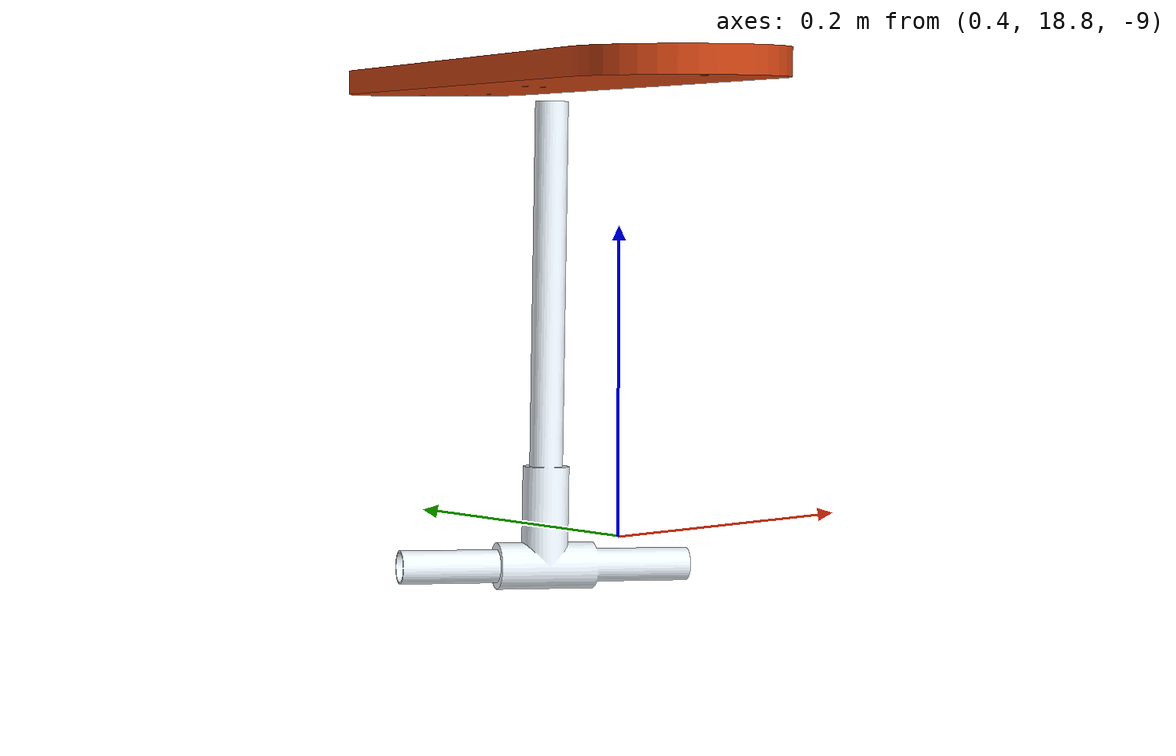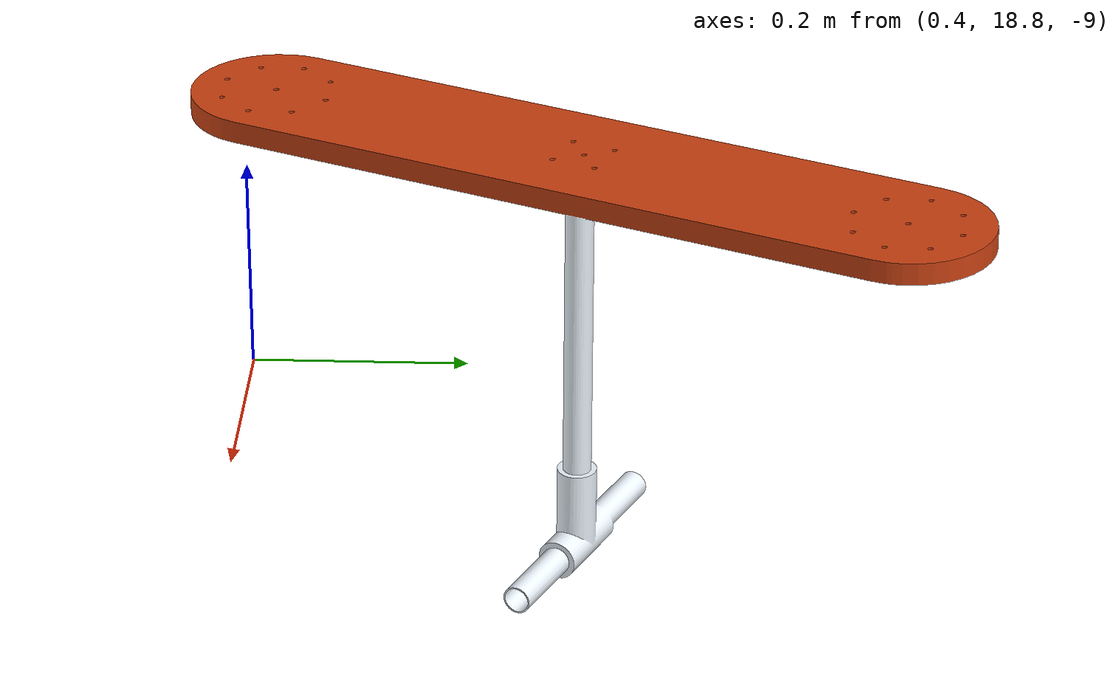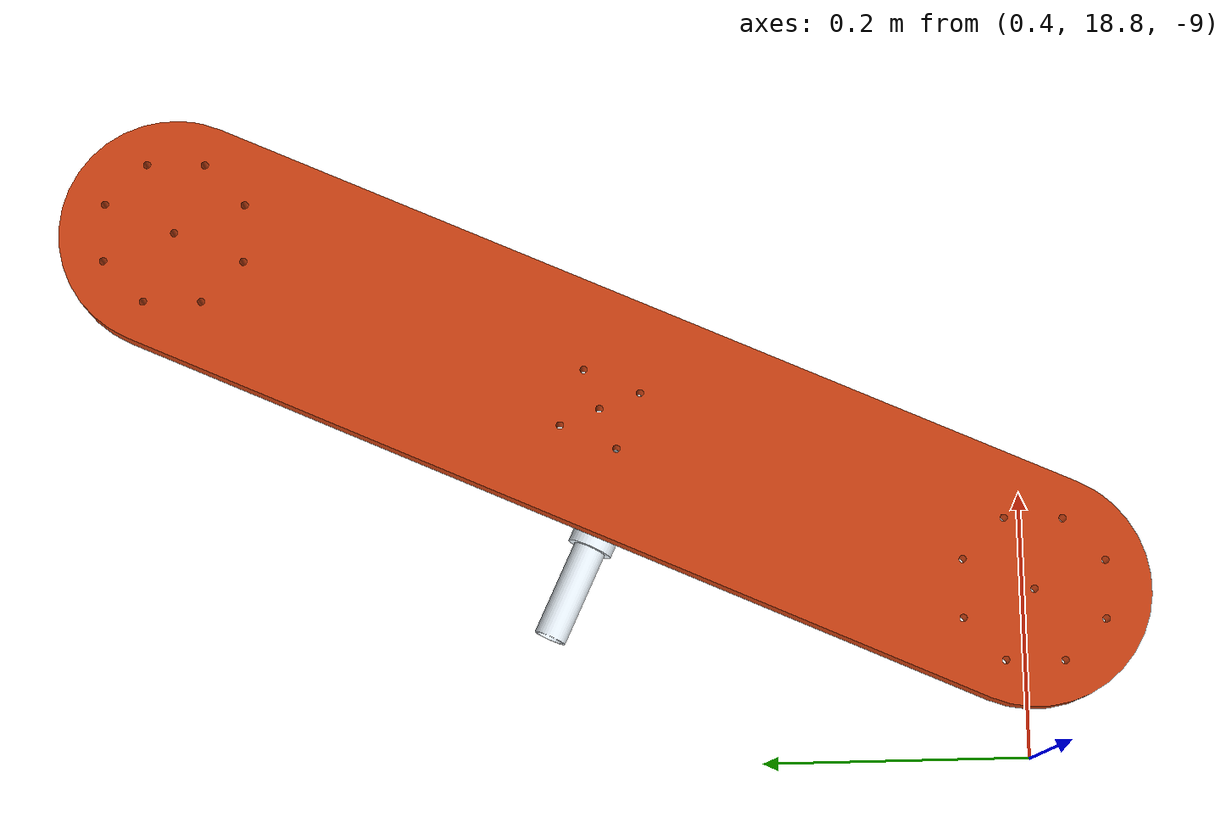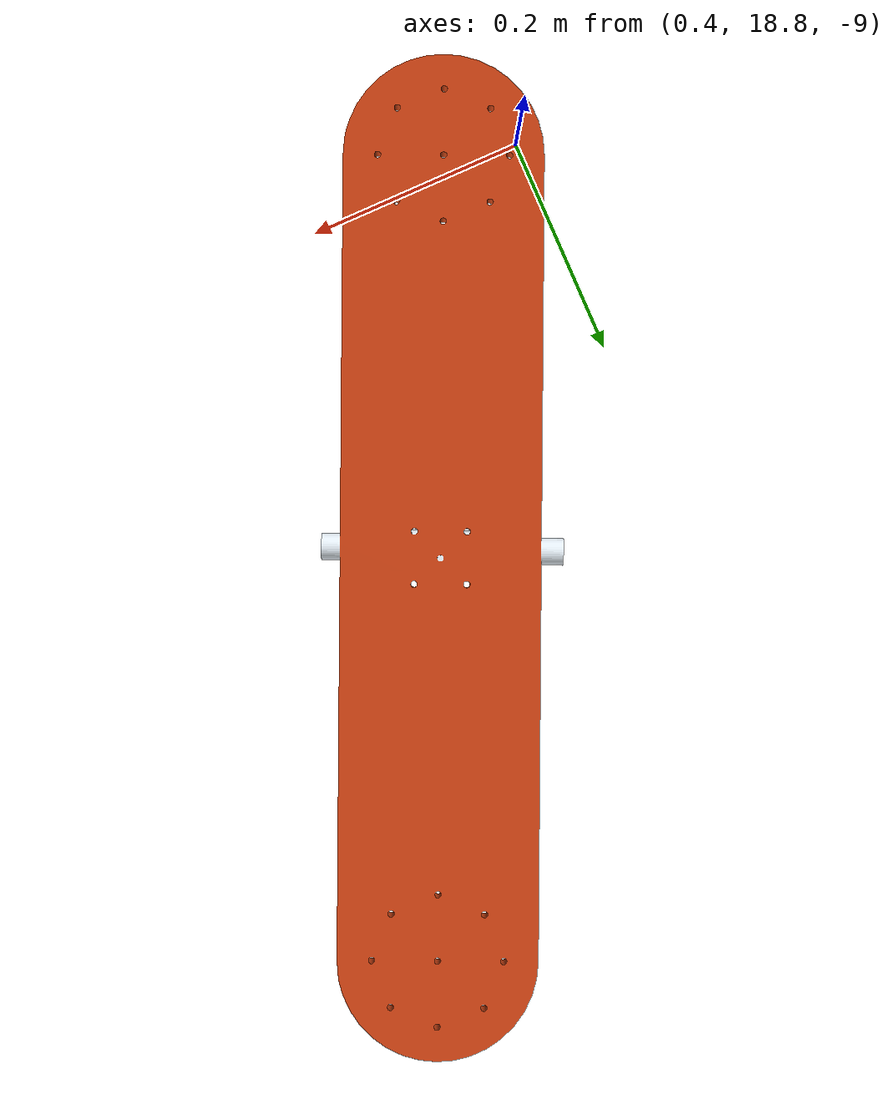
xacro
<?xml version="1.0"?>
<robot name="path_marker3" xmlns:xacro="http://www.ros.org/wiki/xacro">

<!-- Introducir meshes -->
<xacro:property name="visual_mesh_file" value="file://$(find sim_challenges)/models/meshes/pathmarkers/pathmarker3.dae" />

<link name="path_marker_base3">
    <visual>
        <origin xyz="0 2 -8.5" rpy="0.0 0.0 0.0"/>
        <geometry>
            <mesh filename="${visual_mesh_file}" scale="1 1 1" />
        </geometry>
    </visual>

        <!-- Se deben cambiar los parametros reales-->
    <collision>
      <origin xyz="0 2 -8.5" rpy="0.0 0.0 0.0"/>
      <geometry>
        <mesh filename="${visual_mesh_file}" scale="1 1 1" />
      </geometry>
    </collision>

    <inertial>
      <origin xyz="0 2 -8.5" rpy="0.0 0.0 0.0"/>
      <mass value="1"/>
      <inertia
        ixx="1.0" ixy="0.0" ixz="0.0"
        iyy="1.0" iyz="0.0"
        izz="1.0"/>
    </inertial>
</link>
<gazebo reference="path_marker_base3">
  <selfCollide>0</selfCollide>
  <turnGravityOff>1</turnGravityOff>
</gazebo>

</robot>
